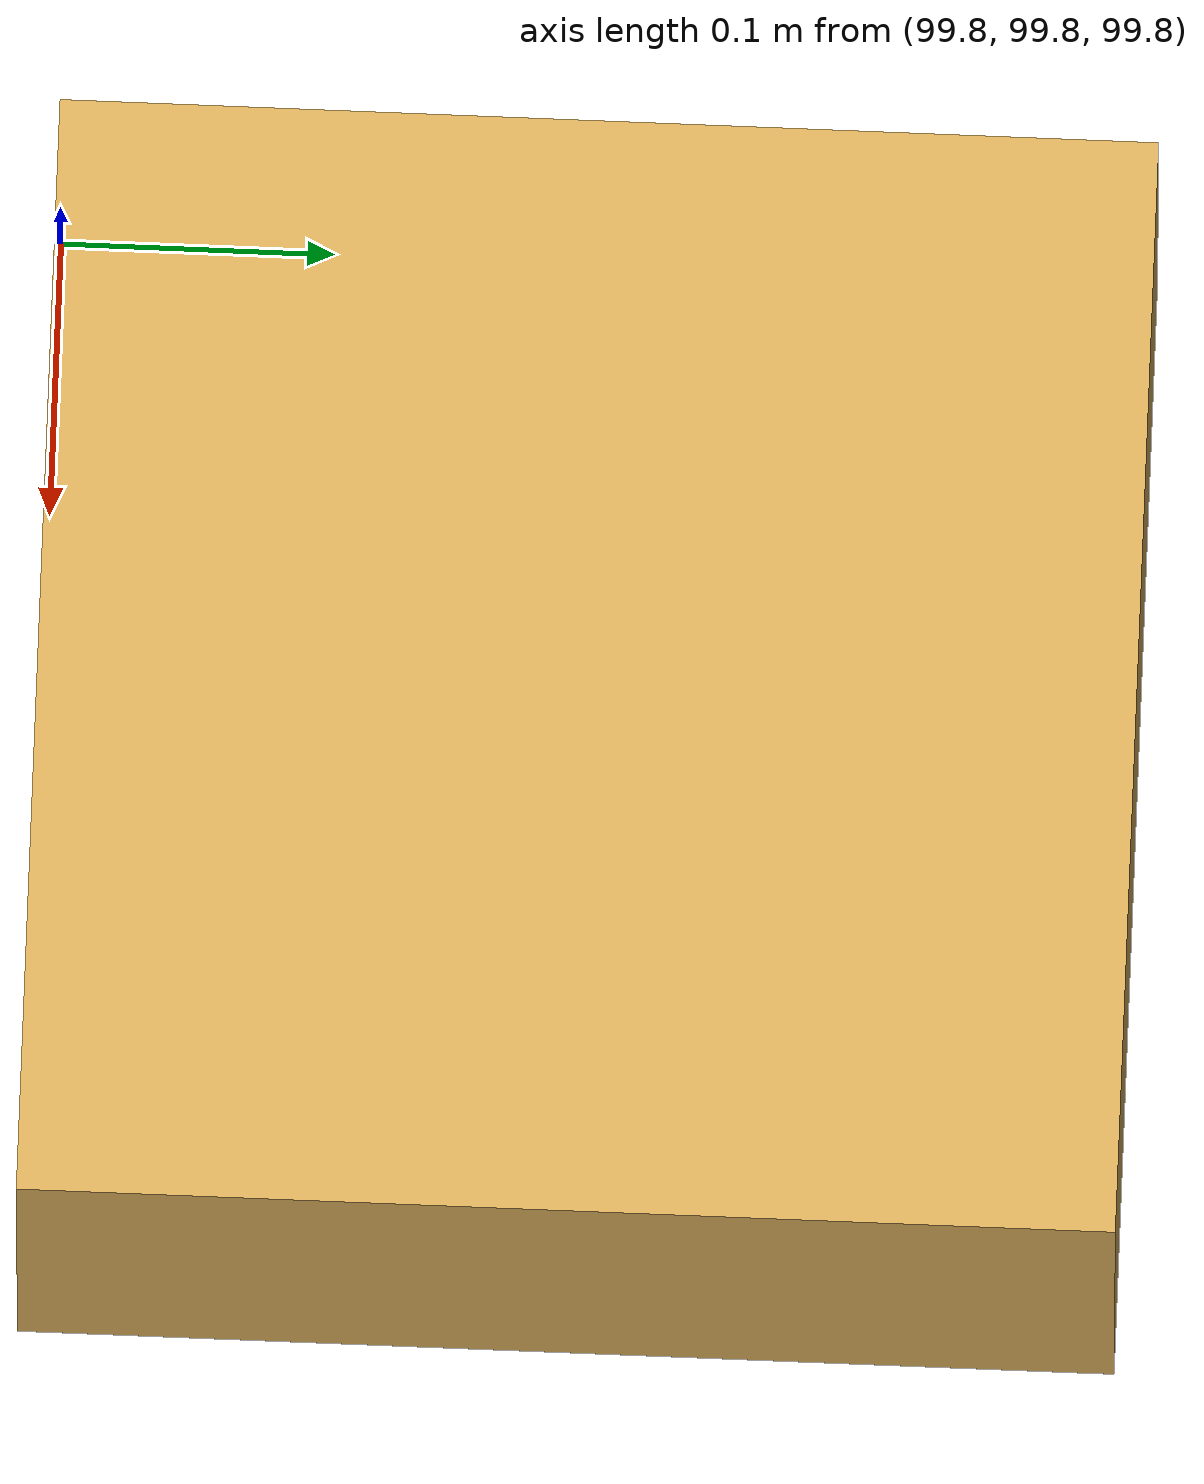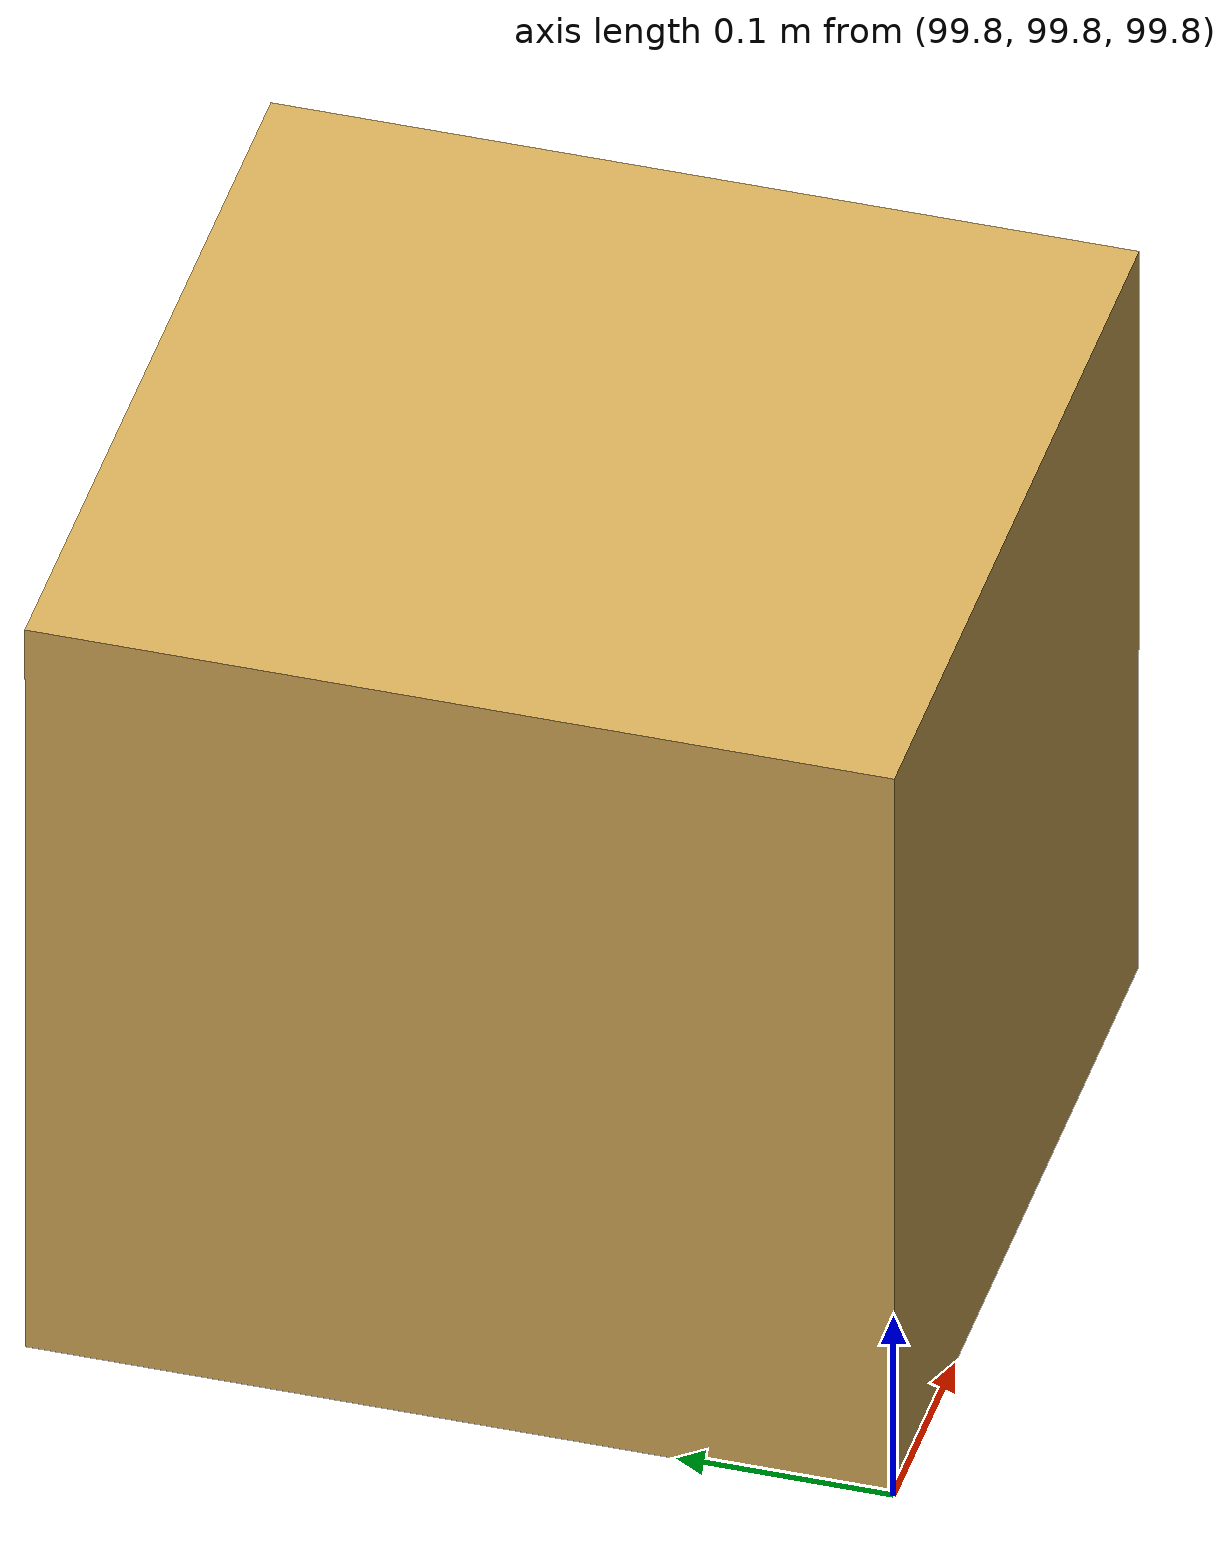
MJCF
<mujoco model="container_unpack">
  <option gravity="0 0 -9.81" timestep="0.002"/>
  <visual><map fogstart="3" fogend="5"/></visual>
  <asset>
    <texture name="t_wall" type="cube" builtin="flat" mark="cross" width="128" height="128" rgb1="0.55 0.55 0.55" rgb2="0.35 0.35 0.35" markrgb="0.15 0.15 0.15" random="0.01"/>
    <texture name="t_box" type="cube" builtin="flat" mark="cross" width="64" height="64" rgb1="0.85 0.68 0.35" rgb2="0.60 0.48 0.25" markrgb="0.25 0.18 0.08" random="0.01"/>
    <texture name="t_noise" type="cube" builtin="flat" mark="cross" width="64" height="64" rgb1="0.88 0.45 0.25" rgb2="0.65 0.32 0.18" markrgb="0.35 0.18 0.08" random="0.01"/>
    <material name="m_wall" texture="t_wall" specular="0.1" shininess="0.3"/>
    <material name="m_box" texture="t_box" specular="0.05" shininess="0.2"/>
    <material name="m_noise" texture="t_noise" specular="0.05" shininess="0.2"/>
  </asset>
  <worldbody>
    <geom name="ground" type="plane" size="8 8 0.1" pos="0 0 0" material="m_wall"/>
    <body name="container" pos="0 0 0">
      <geom name="w_bottom" type="box" pos="0.6000000000000001 0 -0.01" size="0.6200000000000001 1.2200000000000002 0.01" material="m_wall"/>
      <geom name="w_top" type="box" pos="0.6000000000000001 0 2.01" size="0.6200000000000001 1.2200000000000002 0.01" material="m_wall"/>
      <geom name="w_left" type="box" pos="0.6000000000000001 -1.2100000000000002 1.0" size="0.6200000000000001 0.01 1.02" material="m_wall"/>
      <geom name="w_right" type="box" pos="0.6000000000000001 1.2100000000000002 1.0" size="0.6200000000000001 0.01 1.02" material="m_wall"/>
      <geom name="w_back" type="box" pos="1.2100000000000002 0 1.0" size="0.01 1.2200000000000002 1.02" material="m_wall"/>
    </body>
    <body name="box_0" pos="100 100 100">
      <freejoint name="box_0_j"/>
      <geom name="box_0_g" type="box" size="0.2 0.2 0.2" material="m_box" density="300"/>
    </body>
    <body name="box_1" pos="100 100 100">
      <freejoint name="box_1_j"/>
      <geom name="box_1_g" type="box" size="0.2 0.2 0.2" material="m_box" density="300"/>
    </body>
    <body name="box_2" pos="100 100 100">
      <freejoint name="box_2_j"/>
      <geom name="box_2_g" type="box" size="0.2 0.2 0.2" material="m_box" density="300"/>
    </body>
    <body name="box_3" pos="100 100 100">
      <freejoint name="box_3_j"/>
      <geom name="box_3_g" type="box" size="0.2 0.2 0.2" material="m_box" density="300"/>
    </body>
    <body name="box_4" pos="100 100 100">
      <freejoint name="box_4_j"/>
      <geom name="box_4_g" type="box" size="0.2 0.2 0.2" material="m_box" density="300"/>
    </body>
    <body name="box_5" pos="100 100 100">
      <freejoint name="box_5_j"/>
      <geom name="box_5_g" type="box" size="0.2 0.2 0.2" material="m_box" density="300"/>
    </body>
    <body name="box_6" pos="100 100 100">
      <freejoint name="box_6_j"/>
      <geom name="box_6_g" type="box" size="0.2 0.2 0.2" material="m_box" density="300"/>
    </body>
    <body name="box_7" pos="100 100 100">
      <freejoint name="box_7_j"/>
      <geom name="box_7_g" type="box" size="0.2 0.2 0.2" material="m_box" density="300"/>
    </body>
    <body name="box_8" pos="100 100 100">
      <freejoint name="box_8_j"/>
      <geom name="box_8_g" type="box" size="0.2 0.2 0.2" material="m_box" density="300"/>
    </body>
    <body name="box_9" pos="100 100 100">
      <freejoint name="box_9_j"/>
      <geom name="box_9_g" type="box" size="0.2 0.2 0.2" material="m_box" density="300"/>
    </body>
    <body name="box_10" pos="100 100 100">
      <freejoint name="box_10_j"/>
      <geom name="box_10_g" type="box" size="0.2 0.2 0.2" material="m_box" density="300"/>
    </body>
    <body name="box_11" pos="100 100 100">
      <freejoint name="box_11_j"/>
      <geom name="box_11_g" type="box" size="0.2 0.2 0.2" material="m_box" density="300"/>
    </body>
    <body name="box_12" pos="100 100 100">
      <freejoint name="box_12_j"/>
      <geom name="box_12_g" type="box" size="0.2 0.2 0.2" material="m_box" density="300"/>
    </body>
    <body name="box_13" pos="100 100 100">
      <freejoint name="box_13_j"/>
      <geom name="box_13_g" type="box" size="0.2 0.2 0.2" material="m_box" density="300"/>
    </body>
    <body name="box_14" pos="100 100 100">
      <freejoint name="box_14_j"/>
      <geom name="box_14_g" type="box" size="0.2 0.2 0.2" material="m_box" density="300"/>
    </body>
    <body name="box_15" pos="100 100 100">
      <freejoint name="box_15_j"/>
      <geom name="box_15_g" type="box" size="0.2 0.2 0.2" material="m_box" density="300"/>
    </body>
    <body name="box_16" pos="100 100 100">
      <freejoint name="box_16_j"/>
      <geom name="box_16_g" type="box" size="0.2 0.2 0.2" material="m_box" density="300"/>
    </body>
    <body name="box_17" pos="100 100 100">
      <freejoint name="box_17_j"/>
      <geom name="box_17_g" type="box" size="0.2 0.2 0.2" material="m_box" density="300"/>
    </body>
    <body name="box_18" pos="100 100 100">
      <freejoint name="box_18_j"/>
      <geom name="box_18_g" type="box" size="0.2 0.2 0.2" material="m_box" density="300"/>
    </body>
    <body name="box_19" pos="100 100 100">
      <freejoint name="box_19_j"/>
      <geom name="box_19_g" type="box" size="0.2 0.2 0.2" material="m_box" density="300"/>
    </body>
    <body name="box_20" pos="100 100 100">
      <freejoint name="box_20_j"/>
      <geom name="box_20_g" type="box" size="0.2 0.2 0.2" material="m_box" density="300"/>
    </body>
    <body name="box_21" pos="100 100 100">
      <freejoint name="box_21_j"/>
      <geom name="box_21_g" type="box" size="0.2 0.2 0.2" material="m_box" density="300"/>
    </body>
    <body name="box_22" pos="100 100 100">
      <freejoint name="box_22_j"/>
      <geom name="box_22_g" type="box" size="0.2 0.2 0.2" material="m_box" density="300"/>
    </body>
    <body name="box_23" pos="100 100 100">
      <freejoint name="box_23_j"/>
      <geom name="box_23_g" type="box" size="0.2 0.2 0.2" material="m_box" density="300"/>
    </body>
    <body name="box_24" pos="100 100 100">
      <freejoint name="box_24_j"/>
      <geom name="box_24_g" type="box" size="0.2 0.2 0.2" material="m_box" density="300"/>
    </body>
    <body name="box_25" pos="100 100 100">
      <freejoint name="box_25_j"/>
      <geom name="box_25_g" type="box" size="0.2 0.2 0.2" material="m_box" density="300"/>
    </body>
    <body name="box_26" pos="100 100 100">
      <freejoint name="box_26_j"/>
      <geom name="box_26_g" type="box" size="0.2 0.2 0.2" material="m_box" density="300"/>
    </body>
    <body name="box_27" pos="100 100 100">
      <freejoint name="box_27_j"/>
      <geom name="box_27_g" type="box" size="0.2 0.2 0.2" material="m_box" density="300"/>
    </body>
    <body name="box_28" pos="100 100 100">
      <freejoint name="box_28_j"/>
      <geom name="box_28_g" type="box" size="0.2 0.2 0.2" material="m_box" density="300"/>
    </body>
    <body name="box_29" pos="100 100 100">
      <freejoint name="box_29_j"/>
      <geom name="box_29_g" type="box" size="0.2 0.2 0.2" material="m_box" density="300"/>
    </body>
    <body name="box_30" pos="100 100 100">
      <freejoint name="box_30_j"/>
      <geom name="box_30_g" type="box" size="0.2 0.2 0.2" material="m_box" density="300"/>
    </body>
    <body name="box_31" pos="100 100 100">
      <freejoint name="box_31_j"/>
      <geom name="box_31_g" type="box" size="0.2 0.2 0.2" material="m_box" density="300"/>
    </body>
    <body name="box_32" pos="100 100 100">
      <freejoint name="box_32_j"/>
      <geom name="box_32_g" type="box" size="0.2 0.2 0.2" material="m_box" density="300"/>
    </body>
    <body name="box_33" pos="100 100 100">
      <freejoint name="box_33_j"/>
      <geom name="box_33_g" type="box" size="0.2 0.2 0.2" material="m_box" density="300"/>
    </body>
    <body name="box_34" pos="100 100 100">
      <freejoint name="box_34_j"/>
      <geom name="box_34_g" type="box" size="0.2 0.2 0.2" material="m_box" density="300"/>
    </body>
    <body name="box_35" pos="100 100 100">
      <freejoint name="box_35_j"/>
      <geom name="box_35_g" type="box" size="0.2 0.2 0.2" material="m_box" density="300"/>
    </body>
    <body name="box_36" pos="100 100 100">
      <freejoint name="box_36_j"/>
      <geom name="box_36_g" type="box" size="0.2 0.2 0.2" material="m_box" density="300"/>
    </body>
    <body name="box_37" pos="100 100 100">
      <freejoint name="box_37_j"/>
      <geom name="box_37_g" type="box" size="0.2 0.2 0.2" material="m_box" density="300"/>
    </body>
    <body name="box_38" pos="100 100 100">
      <freejoint name="box_38_j"/>
      <geom name="box_38_g" type="box" size="0.2 0.2 0.2" material="m_box" density="300"/>
    </body>
    <body name="box_39" pos="100 100 100">
      <freejoint name="box_39_j"/>
      <geom name="box_39_g" type="box" size="0.2 0.2 0.2" material="m_box" density="300"/>
    </body>
    <body name="box_40" pos="100 100 100">
      <freejoint name="box_40_j"/>
      <geom name="box_40_g" type="box" size="0.2 0.2 0.2" material="m_box" density="300"/>
    </body>
    <body name="box_41" pos="100 100 100">
      <freejoint name="box_41_j"/>
      <geom name="box_41_g" type="box" size="0.2 0.2 0.2" material="m_box" density="300"/>
    </body>
    <body name="box_42" pos="100 100 100">
      <freejoint name="box_42_j"/>
      <geom name="box_42_g" type="box" size="0.2 0.2 0.2" material="m_box" density="300"/>
    </body>
    <body name="box_43" pos="100 100 100">
      <freejoint name="box_43_j"/>
      <geom name="box_43_g" type="box" size="0.2 0.2 0.2" material="m_box" density="300"/>
    </body>
    <body name="box_44" pos="100 100 100">
      <freejoint name="box_44_j"/>
      <geom name="box_44_g" type="box" size="0.2 0.2 0.2" material="m_box" density="300"/>
    </body>
    <body name="box_45" pos="100 100 100">
      <freejoint name="box_45_j"/>
      <geom name="box_45_g" type="box" size="0.2 0.2 0.2" material="m_box" density="300"/>
    </body>
    <body name="box_46" pos="100 100 100">
      <freejoint name="box_46_j"/>
      <geom name="box_46_g" type="box" size="0.2 0.2 0.2" material="m_box" density="300"/>
    </body>
    <body name="box_47" pos="100 100 100">
      <freejoint name="box_47_j"/>
      <geom name="box_47_g" type="box" size="0.2 0.2 0.2" material="m_box" density="300"/>
    </body>
    <body name="box_48" pos="100 100 100">
      <freejoint name="box_48_j"/>
      <geom name="box_48_g" type="box" size="0.2 0.2 0.2" material="m_box" density="300"/>
    </body>
    <body name="box_49" pos="100 100 100">
      <freejoint name="box_49_j"/>
      <geom name="box_49_g" type="box" size="0.2 0.2 0.2" material="m_box" density="300"/>
    </body>
    <body name="box_50" pos="100 100 100">
      <freejoint name="box_50_j"/>
      <geom name="box_50_g" type="box" size="0.2 0.2 0.2" material="m_box" density="300"/>
    </body>
    <body name="box_51" pos="100 100 100">
      <freejoint name="box_51_j"/>
      <geom name="box_51_g" type="box" size="0.2 0.2 0.2" material="m_box" density="300"/>
    </body>
    <body name="box_52" pos="100 100 100">
      <freejoint name="box_52_j"/>
      <geom name="box_52_g" type="box" size="0.2 0.2 0.2" material="m_box" density="300"/>
    </body>
    <body name="box_53" pos="100 100 100">
      <freejoint name="box_53_j"/>
      <geom name="box_53_g" type="box" size="0.2 0.2 0.2" material="m_box" density="300"/>
    </body>
    <body name="box_54" pos="100 100 100">
      <freejoint name="box_54_j"/>
      <geom name="box_54_g" type="box" size="0.2 0.2 0.2" material="m_box" density="300"/>
    </body>
    <body name="box_55" pos="100 100 100">
      <freejoint name="box_55_j"/>
      <geom name="box_55_g" type="box" size="0.2 0.2 0.2" material="m_box" density="300"/>
    </body>
    <body name="box_56" pos="100 100 100">
      <freejoint name="box_56_j"/>
      <geom name="box_56_g" type="box" size="0.2 0.2 0.2" material="m_box" density="300"/>
    </body>
    <body name="box_57" pos="100 100 100">
      <freejoint name="box_57_j"/>
      <geom name="box_57_g" type="box" size="0.2 0.2 0.2" material="m_box" density="300"/>
    </body>
    <body name="box_58" pos="100 100 100">
      <freejoint name="box_58_j"/>
      <geom name="box_58_g" type="box" size="0.2 0.2 0.2" material="m_box" density="300"/>
    </body>
    <body name="box_59" pos="100 100 100">
      <freejoint name="box_59_j"/>
      <geom name="box_59_g" type="box" size="0.2 0.2 0.2" material="m_box" density="300"/>
    </body>
    <body name="box_60" pos="100 100 100">
      <freejoint name="box_60_j"/>
      <geom name="box_60_g" type="box" size="0.2 0.2 0.2" material="m_box" density="300"/>
    </body>
    <body name="box_61" pos="100 100 100">
      <freejoint name="box_61_j"/>
      <geom name="box_61_g" type="box" size="0.2 0.2 0.2" material="m_box" density="300"/>
    </body>
    <body name="box_62" pos="100 100 100">
      <freejoint name="box_62_j"/>
      <geom name="box_62_g" type="box" size="0.2 0.2 0.2" material="m_box" density="300"/>
    </body>
    <body name="box_63" pos="100 100 100">
      <freejoint name="box_63_j"/>
      <geom name="box_63_g" type="box" size="0.2 0.2 0.2" material="m_box" density="300"/>
    </body>
    <body name="box_64" pos="100 100 100">
      <freejoint name="box_64_j"/>
      <geom name="box_64_g" type="box" size="0.2 0.2 0.2" material="m_box" density="300"/>
    </body>
    <body name="box_65" pos="100 100 100">
      <freejoint name="box_65_j"/>
      <geom name="box_65_g" type="box" size="0.2 0.2 0.2" material="m_box" density="300"/>
    </body>
    <body name="box_66" pos="100 100 100">
      <freejoint name="box_66_j"/>
      <geom name="box_66_g" type="box" size="0.2 0.2 0.2" material="m_box" density="300"/>
    </body>
    <body name="box_67" pos="100 100 100">
      <freejoint name="box_67_j"/>
      <geom name="box_67_g" type="box" size="0.2 0.2 0.2" material="m_box" density="300"/>
    </body>
    <body name="box_68" pos="100 100 100">
      <freejoint name="box_68_j"/>
      <geom name="box_68_g" type="box" size="0.2 0.2 0.2" material="m_box" density="300"/>
    </body>
    <body name="box_69" pos="100 100 100">
      <freejoint name="box_69_j"/>
      <geom name="box_69_g" type="box" size="0.2 0.2 0.2" material="m_box" density="300"/>
    </body>
    <body name="box_70" pos="100 100 100">
      <freejoint name="box_70_j"/>
      <geom name="box_70_g" type="box" size="0.2 0.2 0.2" material="m_box" density="300"/>
    </body>
    <body name="box_71" pos="100 100 100">
      <freejoint name="box_71_j"/>
      <geom name="box_71_g" type="box" size="0.2 0.2 0.2" material="m_box" density="300"/>
    </body>
    <body name="box_72" pos="100 100 100">
      <freejoint name="box_72_j"/>
      <geom name="box_72_g" type="box" size="0.2 0.2 0.2" material="m_box" density="300"/>
    </body>
    <body name="box_73" pos="100 100 100">
      <freejoint name="box_73_j"/>
      <geom name="box_73_g" type="box" size="0.2 0.2 0.2" material="m_box" density="300"/>
    </body>
    <body name="box_74" pos="100 100 100">
      <freejoint name="box_74_j"/>
      <geom name="box_74_g" type="box" size="0.2 0.2 0.2" material="m_box" density="300"/>
    </body>
    <body name="box_75" pos="100 100 100">
      <freejoint name="box_75_j"/>
      <geom name="box_75_g" type="box" size="0.2 0.2 0.2" material="m_box" density="300"/>
    </body>
    <body name="box_76" pos="100 100 100">
      <freejoint name="box_76_j"/>
      <geom name="box_76_g" type="box" size="0.2 0.2 0.2" material="m_box" density="300"/>
    </body>
    <body name="box_77" pos="100 100 100">
      <freejoint name="box_77_j"/>
      <geom name="box_77_g" type="box" size="0.2 0.2 0.2" material="m_box" density="300"/>
    </body>
    <body name="box_78" pos="100 100 100">
      <freejoint name="box_78_j"/>
      <geom name="box_78_g" type="box" size="0.2 0.2 0.2" material="m_box" density="300"/>
    </body>
    <body name="box_79" pos="100 100 100">
      <freejoint name="box_79_j"/>
      <geom name="box_79_g" type="box" size="0.2 0.2 0.2" material="m_box" density="300"/>
    </body>
    <body name="box_80" pos="100 100 100">
      <freejoint name="box_80_j"/>
      <geom name="box_80_g" type="box" size="0.2 0.2 0.2" material="m_box" density="300"/>
    </body>
    <body name="box_81" pos="100 100 100">
      <freejoint name="box_81_j"/>
      <geom name="box_81_g" type="box" size="0.2 0.2 0.2" material="m_box" density="300"/>
    </body>
    <body name="box_82" pos="100 100 100">
      <freejoint name="box_82_j"/>
      <geom name="box_82_g" type="box" size="0.2 0.2 0.2" material="m_box" density="300"/>
    </body>
    <body name="box_83" pos="100 100 100">
      <freejoint name="box_83_j"/>
      <geom name="box_83_g" type="box" size="0.2 0.2 0.2" material="m_box" density="300"/>
    </body>
    <body name="box_84" pos="100 100 100">
      <freejoint name="box_84_j"/>
      <geom name="box_84_g" type="box" size="0.2 0.2 0.2" material="m_box" density="300"/>
    </body>
    <body name="box_85" pos="100 100 100">
      <freejoint name="box_85_j"/>
      <geom name="box_85_g" type="box" size="0.2 0.2 0.2" material="m_box" density="300"/>
    </body>
    <body name="box_86" pos="100 100 100">
      <freejoint name="box_86_j"/>
      <geom name="box_86_g" type="box" size="0.2 0.2 0.2" material="m_box" density="300"/>
    </body>
    <body name="box_87" pos="100 100 100">
      <freejoint name="box_87_j"/>
      <geom name="box_87_g" type="box" size="0.2 0.2 0.2" material="m_box" density="300"/>
    </body>
    <body name="box_88" pos="100 100 100">
      <freejoint name="box_88_j"/>
      <geom name="box_88_g" type="box" size="0.2 0.2 0.2" material="m_box" density="300"/>
    </body>
    <body name="box_89" pos="100 100 100">
      <freejoint name="box_89_j"/>
      <geom name="box_89_g" type="box" size="0.2 0.2 0.2" material="m_box" density="300"/>
    </body>
    <body name="box_90" pos="100 100 100">
      <freejoint name="box_90_j"/>
      <geom name="box_90_g" type="box" size="0.2 0.2 0.2" material="m_box" density="300"/>
    </body>
    <body name="box_91" pos="100 100 100">
      <freejoint name="box_91_j"/>
      <geom name="box_91_g" type="box" size="0.2 0.2 0.2" material="m_box" density="300"/>
    </body>
    <body name="box_92" pos="100 100 100">
      <freejoint name="box_92_j"/>
      <geom name="box_92_g" type="box" size="0.2 0.2 0.2" material="m_box" density="300"/>
    </body>
    <body name="box_93" pos="100 100 100">
      <freejoint name="box_93_j"/>
      <geom name="box_93_g" type="box" size="0.2 0.2 0.2" material="m_box" density="300"/>
    </body>
    <body name="box_94" pos="100 100 100">
      <freejoint name="box_94_j"/>
      <geom name="box_94_g" type="box" size="0.2 0.2 0.2" material="m_box" density="300"/>
    </body>
    <body name="box_95" pos="100 100 100">
      <freejoint name="box_95_j"/>
      <geom name="box_95_g" type="box" size="0.2 0.2 0.2" material="m_box" density="300"/>
    </body>
    <body name="box_96" pos="100 100 100">
      <freejoint name="box_96_j"/>
      <geom name="box_96_g" type="box" size="0.2 0.2 0.2" material="m_box" density="300"/>
    </body>
    <body name="box_97" pos="100 100 100">
      <freejoint name="box_97_j"/>
      <geom name="box_97_g" type="box" size="0.2 0.2 0.2" material="m_box" density="300"/>
    </body>
    <body name="box_98" pos="100 100 100">
      <freejoint name="box_98_j"/>
      <geom name="box_98_g" type="box" size="0.2 0.2 0.2" material="m_box" density="300"/>
    </body>
    <body name="box_99" pos="100 100 100">
      <freejoint name="box_99_j"/>
      <geom name="box_99_g" type="box" size="0.2 0.2 0.2" material="m_box" density="300"/>
    </body>
  </worldbody>
</mujoco>
